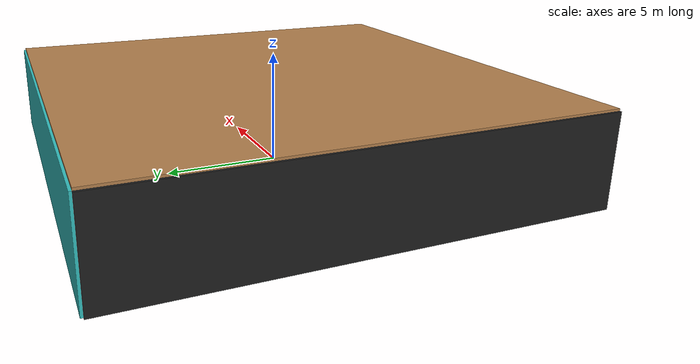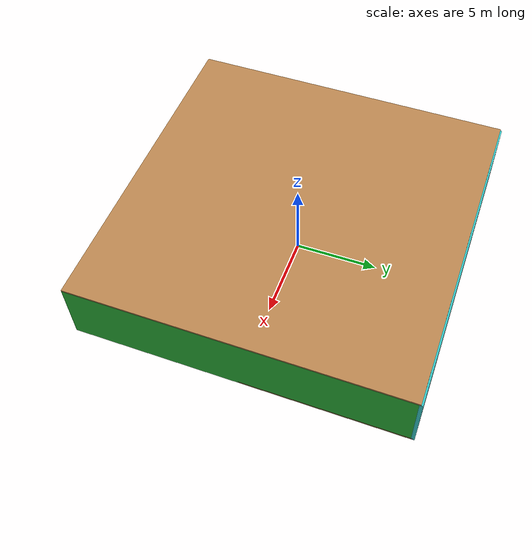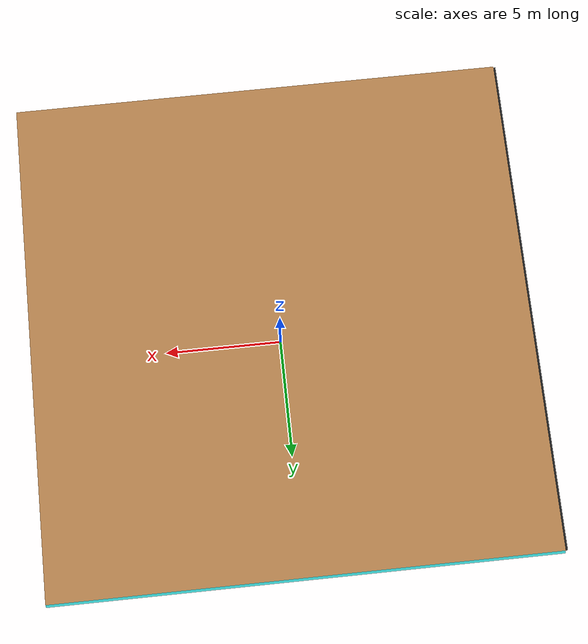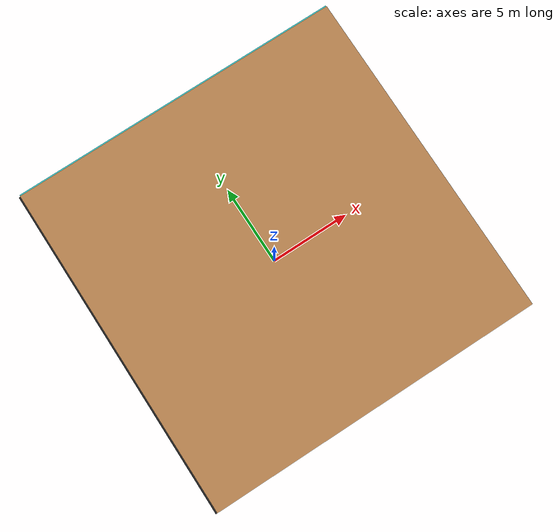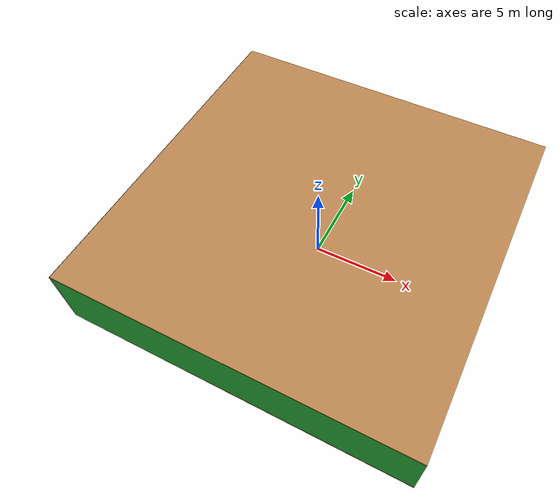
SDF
<sdf version="1.4">
 <world name="default">
  <physics type="ode">
   <max_step_size>0.001</max_step_size>
   <real_time_factor>1</real_time_factor>
   <real_time_update_rate>1000</real_time_update_rate>
   <gravity>0 0 -9.8</gravity>
  </physics>
  <scene><ambient>0.4 0.4 0.4 1</ambient><background>0.7 0.7 0.7 1</background><shadows>1</shadows></scene>
  <model name="Surrounding">
   <static>1</static>
   <link name="Ceiling">
    <collision name="Ceiling_Collision"><geometry><box><size>20 20 0.1</size></box></geometry></collision>
    <visual name="Ceiling_Visual">
     <geometry><box><size>20 20 0.1</size></box></geometry>
     <material>
      <script><uri>file://media/materials/scripts/gazebo.material</uri><name>Gazebo/WoodFloor</name></script>
     </material>
    </visual>
    <pose>0 0 4.05 0 0 0</pose>
   </link>
   <link name="Wall_South">
    <collision name="Wall_South_Collision">
     <geometry><box><size>20 0 4</size></box></geometry>
     <pose>0 0 2 0 -0 0</pose>
    </collision>
    <visual name="Wall_South_Visual">
     <pose>0 0 2 0 -0 0</pose>
     <geometry><box><size>20 0 4</size></box></geometry>
     <material>
      <script><uri>file://media/materials/scripts/gazebo.material</uri><name>Gazebo/Green</name></script>
     </material>
    </visual>
    <velocity_decay><linear>0</linear><angular>0</angular></velocity_decay>
    <pose>0 -10 0 0 -0 0</pose>
   </link>
   <link name="Wall_East">
    <collision name="Wall_21_Collision">
     <geometry><box><size>20 0 4</size></box></geometry>
     <pose>0 0 2 0 -0 0</pose>
    </collision>
    <visual name="Wall_21_Visual">
     <pose>0 0 2 0 -0 0</pose>
     <geometry><box><size>20 0 4</size></box></geometry>
     <material>
      <script><uri>file://media/materials/scripts/gazebo.material</uri><name>Gazebo/Green</name></script>
     </material>
    </visual>
    <velocity_decay><linear>0</linear><angular>0</angular></velocity_decay>
    <pose>10 0 0 0 -0 1.5708</pose>
   </link>
   <link name="Wall_North">
    <collision name="Wall_22_Collision">
     <geometry><box><size>20 0.2 4</size></box></geometry>
     <pose>0 0 2 0 -0 0</pose>
    </collision>
    <visual name="Wall_22_Visual">
     <pose>0 0 2 0 -0 0</pose>
     <geometry><box><size>20 0.2 4</size></box></geometry>
     <material>
      <script><uri>file://media/materials/scripts/gazebo.material</uri><name>Gazebo/Turquoise</name></script>
     </material>
    </visual>
    <velocity_decay><linear>0</linear><angular>0</angular></velocity_decay>
    <pose>0 10 0 0 -0 0</pose>
   </link>
   <link name="Wall_West">
    <collision name="Wall_23_Collision">
     <geometry><box><size>20 0.2 4</size></box></geometry>
     <pose>0 0 2 0 -0 0</pose>
    </collision>
    <visual name="Wall_23_Visual">
     <pose>0 0 2 0 -0 0</pose>
     <geometry><box><size>20 0.2 4</size></box></geometry>
     <material>
      <script><uri>file://media/materials/scripts/gazebo.material</uri><name>Gazebo/Black</name></script>
     </material>
    </visual>
    <velocity_decay><linear>0</linear><angular>0</angular></velocity_decay>
    <pose>-10 0 0 0 0 -1.5708</pose>
   </link>
   <link name="Ground_link">
    <collision name="collision">
     <pose>0 0 .05 0 -0 0</pose>
     <geometry><box><size>20 20 0.1</size></box></geometry>
    </collision>
    <visual name="visual">
     <pose>0 0 .05 0 -0 0</pose>
     <geometry><box><size>20 20 0.1</size></box></geometry>
     <material>
      <script><uri>file://media/materials/scripts/gazebo.material</uri><name>Gazebo/RedTransparent</name></script>
     </material>
    </visual>
   </link>
   <static>1</static>
  </model>
  <spherical_coordinates>
   <surface_model>EARTH_WGS84</surface_model>
   <latitude_deg>0</latitude_deg>
   <longitude_deg>0</longitude_deg>
   <elevation>0</elevation>
   <heading_deg>0</heading_deg>
  </spherical_coordinates>
  <light name="lightball_0" type="diffuse">
   <diffuse>0.8 0.8 0.8 1</diffuse>
   <specular>0.2 0.2 0.2 1</specular>
   <attenuation>
    <range>100</range>
    <constant>0.7</constant>
    <linear>0.01</linear>
    <quadratic>0.001</quadratic>
   </attenuation>
   <direction>-0.5 0.1 -0.9</direction>
   <pose>-0.289612834961 -0.109966387211 3.77536010588 0 0 0</pose>
  </light>
  <light name="lightball_1" type="diffuse">
   <diffuse>0.8 0.8 0.8 1</diffuse>
   <specular>0.2 0.2 0.2 1</specular>
   <attenuation>
    <range>100</range>
    <constant>0.7</constant>
    <linear>0.01</linear>
    <quadratic>0.001</quadratic>
   </attenuation>
   <direction>-0.5 0.1 -0.9</direction>
   <pose>-1.05597552062 0.860290446417 3.01273375118 0 0 0</pose>
  </light>
  <light name="lightball_2" type="diffuse">
   <diffuse>0.8 0.8 0.8 1</diffuse>
   <specular>0.2 0.2 0.2 1</specular>
   <attenuation>
    <range>100</range>
    <constant>0.7</constant>
    <linear>0.01</linear>
    <quadratic>0.001</quadratic>
   </attenuation>
   <direction>-0.5 0.1 -0.9</direction>
   <pose>-2.77575724326 7.69263589424 1.15350513518 0 0 0</pose>
  </light>
  <light name="lightball_3" type="diffuse">
   <diffuse>0.8 0.8 0.8 1</diffuse>
   <specular>0.2 0.2 0.2 1</specular>
   <attenuation>
    <range>100</range>
    <constant>0.7</constant>
    <linear>0.01</linear>
    <quadratic>0.001</quadratic>
   </attenuation>
   <direction>-0.5 0.1 -0.9</direction>
   <pose>0.0345527204477 4.95658574006 1.5997113204 0 0 0</pose>
  </light>
  <light name="lightball_4" type="diffuse">
   <diffuse>0.8 0.8 0.8 1</diffuse>
   <specular>0.2 0.2 0.2 1</specular>
   <attenuation>
    <range>100</range>
    <constant>0.7</constant>
    <linear>0.01</linear>
    <quadratic>0.001</quadratic>
   </attenuation>
   <direction>-0.5 0.1 -0.9</direction>
   <pose>9.62734999672 0.172294288841 1.16454857071 0 0 0</pose>
  </light>
  <light name="lightball_5" type="diffuse">
   <diffuse>0.8 0.8 0.8 1</diffuse>
   <specular>0.2 0.2 0.2 1</specular>
   <attenuation>
    <range>100</range>
    <constant>0.7</constant>
    <linear>0.01</linear>
    <quadratic>0.001</quadratic>
   </attenuation>
   <direction>-0.5 0.1 -0.9</direction>
   <pose>4.63454338208 5.61465747668 2.98814180783 0 0 0</pose>
  </light>
  <light name="lightball_6" type="diffuse">
   <diffuse>0.8 0.8 0.8 1</diffuse>
   <specular>0.2 0.2 0.2 1</specular>
   <attenuation>
    <range>100</range>
    <constant>0.7</constant>
    <linear>0.01</linear>
    <quadratic>0.001</quadratic>
   </attenuation>
   <direction>-0.5 0.1 -0.9</direction>
   <pose>2.56212595853 -7.31284671387 0.547528657217 0 0 0</pose>
  </light>
  <light name="lightball_7" type="diffuse">
   <diffuse>0.8 0.8 0.8 1</diffuse>
   <specular>0.2 0.2 0.2 1</specular>
   <attenuation>
    <range>100</range>
    <constant>0.7</constant>
    <linear>0.01</linear>
    <quadratic>0.001</quadratic>
   </attenuation>
   <direction>-0.5 0.1 -0.9</direction>
   <pose>2.50198493801 9.40094169565 1.27466385082 0 0 0</pose>
  </light>
  <light name="lightball_8" type="diffuse">
   <diffuse>0.8 0.8 0.8 1</diffuse>
   <specular>0.2 0.2 0.2 1</specular>
   <attenuation>
    <range>100</range>
    <constant>0.7</constant>
    <linear>0.01</linear>
    <quadratic>0.001</quadratic>
   </attenuation>
   <direction>-0.5 0.1 -0.9</direction>
   <pose>6.87951175793 -2.57421178904 2.19825333588 0 0 0</pose>
  </light>
  <light name="lightball_9" type="diffuse">
   <diffuse>0.8 0.8 0.8 1</diffuse>
   <specular>0.2 0.2 0.2 1</specular>
   <attenuation>
    <range>100</range>
    <constant>0.7</constant>
    <linear>0.01</linear>
    <quadratic>0.001</quadratic>
   </attenuation>
   <direction>-0.5 0.1 -0.9</direction>
   <pose>-5.84572084587 -4.04504462182 1.7603441959 0 0 0</pose>
  </light>
  <light name="lightball_10" type="diffuse">
   <diffuse>0.8 0.8 0.8 1</diffuse>
   <specular>0.2 0.2 0.2 1</specular>
   <attenuation>
    <range>100</range>
    <constant>0.7</constant>
    <linear>0.01</linear>
    <quadratic>0.001</quadratic>
   </attenuation>
   <direction>-0.5 0.1 -0.9</direction>
   <pose>2.42999762267 1.47906445689 3.86255320047 0 0 0</pose>
  </light>
  <light name="lightball_11" type="diffuse">
   <diffuse>0.8 0.8 0.8 1</diffuse>
   <specular>0.2 0.2 0.2 1</specular>
   <attenuation>
    <range>100</range>
    <constant>0.7</constant>
    <linear>0.01</linear>
    <quadratic>0.001</quadratic>
   </attenuation>
   <direction>-0.5 0.1 -0.9</direction>
   <pose>-7.65809746877 -2.26899588519 3.57623931282 0 0 0</pose>
  </light>
  <light name="lightball_12" type="diffuse">
   <diffuse>0.8 0.8 0.8 1</diffuse>
   <specular>0.2 0.2 0.2 1</specular>
   <attenuation>
    <range>100</range>
    <constant>0.7</constant>
    <linear>0.01</linear>
    <quadratic>0.001</quadratic>
   </attenuation>
   <direction>-0.5 0.1 -0.9</direction>
   <pose>2.25551533355 -7.42574216402 1.12629943489 0 0 0</pose>
  </light>
  <include><uri>model://cabinet</uri><pose>-1.18649461174 1.6839515942 0 0 0 0.677143028773</pose></include>
  <include><uri>model://cabinet</uri><pose>-1.93315571847 3.7236401944 0 0 0 1.43148009021</pose></include>
  <include><uri>model://cabinet</uri><pose>7.70054975687 -7.83479994543 0 0 0 0.24874560397</pose></include>
  <include><uri>model://cabinet</uri><pose>7.49393074127 1.60835686569 0 0 0 2.04382386875</pose></include>
 </world>
</sdf>

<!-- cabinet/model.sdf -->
<sdf version="1.5">
  <model name="cabinet">
    <static>true</static>
    <link name="cabinet_bottom_plate">
      <inertial>
        <pose>0 0 -1 0 0 0</pose>
        <inertia>
          <ixx>2.050000</ixx>
          <ixy>0</ixy>
          <ixz>0</ixz>
          <iyy>2.050000</iyy>
          <iyz>0</iyz>
          <izz>2.050000</izz>
        </inertia>
        <mass>25.000000</mass>
      </inertial>
      <collision name="cabinet_bottom_plate_geom">
        <pose>0 0 0.010000 0 0 0</pose>
        <geometry>
          <box>
            <size>0.450000 0.450000 0.020000</size>
          </box>
        </geometry>
      </collision>
      <visual name="cabinet_bottom_plate_geom_visual">
        <pose>0 0 0.010000 0 0 0</pose>
        <geometry>
          <box>
            <size>0.450000 0.450000 0.020000</size>
          </box>
        </geometry>
        <material>
          <script>
            <uri>model://media/materials/scripts/gazebo.material</uri>
            <name>Gazebo/Wood</name>
          </script>
        </material>
      </visual>
      <collision name="cabinet_bottom_plate_geom_cabinet_back_plate">
        <pose>0.235000 0 0.510000 0 0 0</pose>
        <geometry>
          <box>
            <size>0.020000 0.450000 1.020000</size>
          </box>
        </geometry>
      </collision>
      <visual name="cabinet_bottom_plate_geom_cabinet_back_plate_visual">
        <pose>0.235000 0 0.510000 0 0 0</pose>
        <geometry>
          <box>
            <size>0.020000 0.450000 1.020000</size>
          </box>
        </geometry>
        <material>
          <script>
            <uri>model://media/materials/scripts/gazebo.material</uri>
            <name>Gazebo/Wood</name>
          </script>
        </material>
      </visual>
      <collision name="cabinet_bottom_plate_geom_cabinet_left_plate">
        <pose>0 0.235000 0.510000 0 0 0</pose>
        <geometry>
          <box>
            <size>0.450000 0.020000 1.020000</size>
          </box>
        </geometry>
      </collision>
      <visual name="cabinet_bottom_plate_geom_cabinet_left_plate_visual">
        <pose>0 0.235000 0.510000 0 0 0</pose>
        <geometry>
          <box>
            <size>0.450000 0.020000 1.020000</size>
          </box>
        </geometry>
        <material>
          <script>
            <uri>model://media/materials/scripts/gazebo.material</uri>
            <name>Gazebo/Wood</name>
          </script>
        </material>
      </visual>
      <collision name="cabinet_bottom_plate_geom_cabinet_middle_plate">
        <pose>0 0 0.510000 0 0 0</pose>
        <geometry>
          <box>
            <size>0.450000 0.450000 0.020000</size>
          </box>
        </geometry>
      </collision>
      <visual name="cabinet_bottom_plate_geom_cabinet_middle_plate_visual">
        <pose>0 0 0.510000 0 0 0</pose>
        <geometry>
          <box>
            <size>0.450000 0.450000 0.020000</size>
          </box>
        </geometry>
        <material>
          <script>
            <uri>model://media/materials/scripts/gazebo.material</uri>
            <name>Gazebo/Wood</name>
          </script>
        </material>
      </visual>
      <collision name="cabinet_bottom_plate_geom_cabinet_right_plate">
        <pose>0 -0.235000 0.510000 0 0 0</pose>
        <geometry>
          <box>
            <size>0.450000 0.020000 1.020000</size>
          </box>
        </geometry>
      </collision>
      <visual name="cabinet_bottom_plate_geom_cabinet_right_plate_visual">
        <pose>0 -0.235000 0.510000 0 0 0</pose>
        <geometry>
          <box>
            <size>0.450000 0.020000 1.020000</size>
          </box>
        </geometry>
        <material>
          <script>
            <uri>model://media/materials/scripts/gazebo.material</uri>
            <name>Gazebo/Wood</name>
          </script>
        </material>
      </visual>
      <collision name="cabinet_bottom_plate_geom_cabinet_top_plate">
        <pose>0 0 1.010000 0 0 0</pose>
        <geometry>
          <box>
            <size>0.450000 0.450000 0.020000</size>
          </box>
        </geometry>
      </collision>
      <visual name="cabinet_bottom_plate_geom_cabinet_top_plate_visual">
        <pose>0 0 1.010000 0 0 0</pose>
        <geometry>
          <box>
            <size>0.450000 0.450000 0.020000</size>
          </box>
        </geometry>
        <material>
          <script>
            <uri>model://media/materials/scripts/gazebo.material</uri>
            <name>Gazebo/Wood</name>
          </script>
        </material>
      </visual>
    </link>
  </model>
</sdf>
